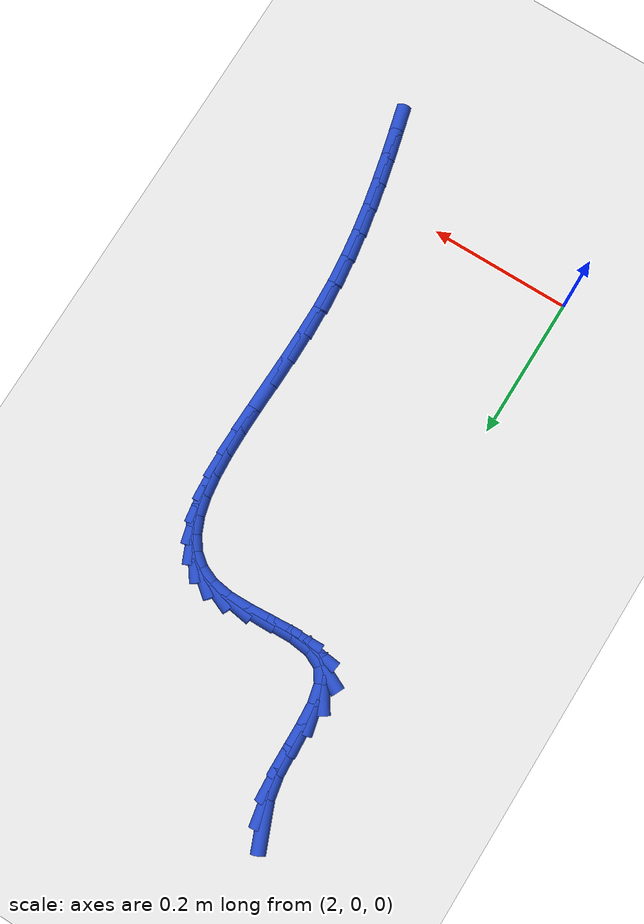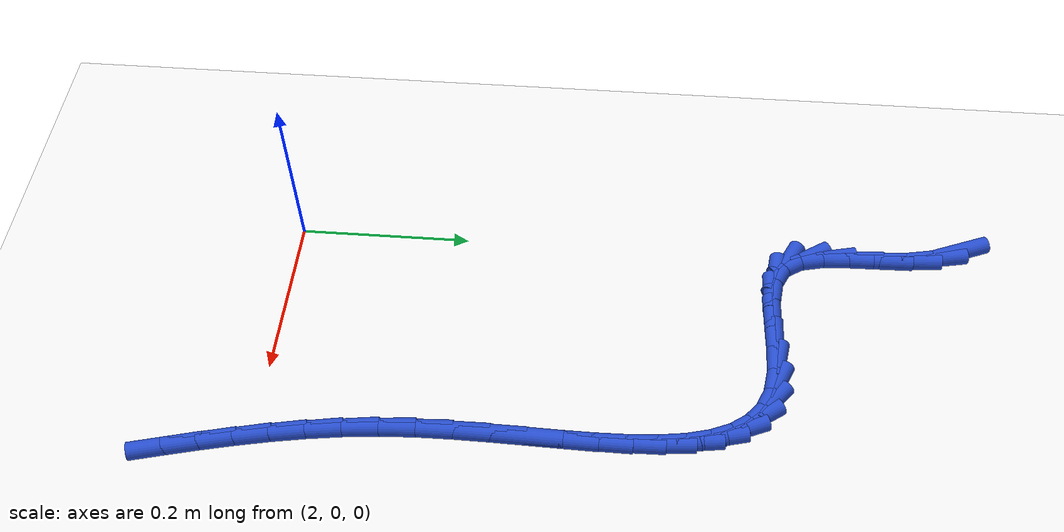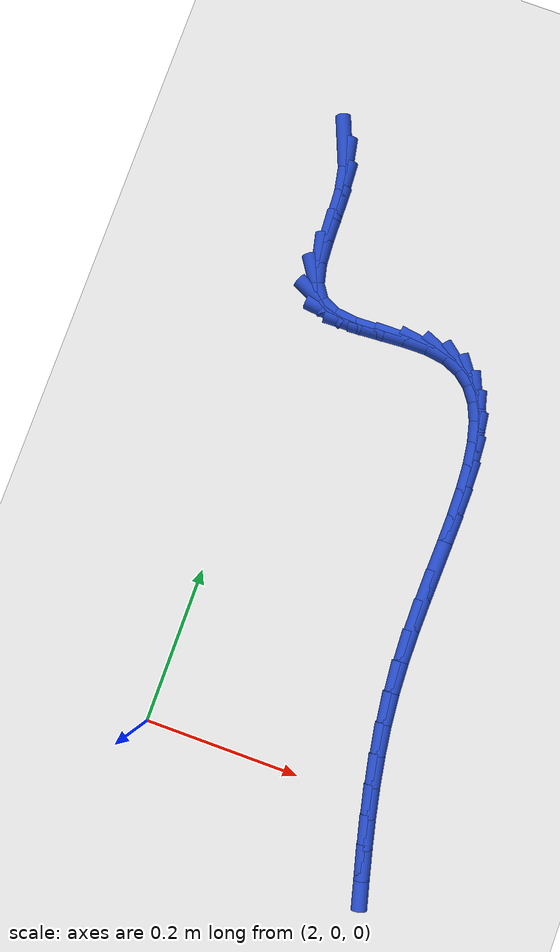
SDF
<sdf version="1.6">
 <world name="default">
  <model name="ground_plane">
   <static>1</static>
   <link name="link">
    <collision name="collision">
     <geometry><plane><normal>0 0 1</normal><size>100 100</size></plane></geometry>
     <surface><friction><ode><mu>100</mu><mu2>50</mu2></ode></friction></surface>
    </collision>
    <visual name="visual">
     <cast_shadows>0</cast_shadows>
     <geometry><plane><normal>0 0 1</normal><size>100 100</size></plane></geometry>
     <material>
      <script><uri>file://media/materials/scripts/gazebo.material</uri><name>Gazebo/WhiteGlow</name></script>
     </material>
    </visual>
   </link>
  </model>
  <model name="line">
   <link name="link_97">
    <pose>1.9829195325251114 0.7785023798792475 0.01 0 1.57 -1.179465124337573</pose>
    <collision name="collision">
     <geometry><cylinder><radius>0.01</radius><length>0.08</length></cylinder></geometry>
    </collision>
    <visual name="visual">
     <material>
      <script><name>Gazebo/Blue</name><uri>file://media/materials/scripts/gazebo.material</uri></script>
     </material>
     <geometry><cylinder><radius>0.01</radius><length>0.08</length></cylinder></geometry>
    </visual>
   </link>
   <link name="link_98">
    <pose>1.9941751014416411 0.7512235521156433 0.01 0 1.57 -1.3770491648950995</pose>
    <collision name="collision">
     <geometry><cylinder><radius>0.01</radius><length>0.08</length></cylinder></geometry>
    </collision>
    <visual name="visual">
     <material>
      <script><name>Gazebo/Blue</name><uri>file://media/materials/scripts/gazebo.material</uri></script>
     </material>
     <geometry><cylinder><radius>0.01</radius><length>0.08</length></cylinder></geometry>
    </visual>
   </link>
   <link name="link_99">
    <pose>2.0002744372742893 0.7201375469455553 0.01 0 1.57 -1.5091721894389243</pose>
    <collision name="collision">
     <geometry><cylinder><radius>0.01</radius><length>0.08</length></cylinder></geometry>
    </collision>
    <visual name="visual">
     <material>
      <script><name>Gazebo/Blue</name><uri>file://media/materials/scripts/gazebo.material</uri></script>
     </material>
     <geometry><cylinder><radius>0.01</radius><length>0.08</length></cylinder></geometry>
    </visual>
   </link>
   <link name="link_100">
    <pose>2.0023562996591324 0.6863970924414534 0.01 0 1.57 -1.5493597859141965</pose>
    <collision name="collision">
     <geometry><cylinder><radius>0.01</radius><length>0.08</length></cylinder></geometry>
    </collision>
    <visual name="visual">
     <material>
      <script><name>Gazebo/Blue</name><uri>file://media/materials/scripts/gazebo.material</uri></script>
     </material>
     <geometry><cylinder><radius>0.01</radius><length>0.08</length></cylinder></geometry>
    </visual>
   </link>
   <link name="link_101">
    <pose>2.003083612430499 0.6524736452865388 0.01 0 1.57 -1.5045199084739298</pose>
    <collision name="collision">
     <geometry><cylinder><radius>0.01</radius><length>0.08</length></cylinder></geometry>
    </collision>
    <visual name="visual">
     <material>
      <script><name>Gazebo/Blue</name><uri>file://media/materials/scripts/gazebo.material</uri></script>
     </material>
     <geometry><cylinder><radius>0.01</radius><length>0.08</length></cylinder></geometry>
    </visual>
   </link>
   <link name="link_102">
    <pose>2.005179863088843 0.6208910627120544 0.01 0 1.57 -1.3431797479480343</pose>
    <collision name="collision">
     <geometry><cylinder><radius>0.01</radius><length>0.08</length></cylinder></geometry>
    </collision>
    <visual name="visual">
     <material>
      <script><name>Gazebo/Blue</name><uri>file://media/materials/scripts/gazebo.material</uri></script>
     </material>
     <geometry><cylinder><radius>0.01</radius><length>0.08</length></cylinder></geometry>
    </visual>
   </link>
   <link name="link_103">
    <pose>2.011368539134622 0.5941732019492428 0.01 0 1.57 -0.9785649871428863</pose>
    <collision name="collision">
     <geometry><cylinder><radius>0.01</radius><length>0.08</length></cylinder></geometry>
    </collision>
    <visual name="visual">
     <material>
      <script><name>Gazebo/Blue</name><uri>file://media/materials/scripts/gazebo.material</uri></script>
     </material>
     <geometry><cylinder><radius>0.01</radius><length>0.08</length></cylinder></geometry>
    </visual>
   </link>
   <link name="link_104">
    <pose>2.024373128068291 0.5748439202293475 0.01 0 1.57 -0.4430360657510386</pose>
    <collision name="collision">
     <geometry><cylinder><radius>0.01</radius><length>0.08</length></cylinder></geometry>
    </collision>
    <visual name="visual">
     <material>
      <script><name>Gazebo/Blue</name><uri>file://media/materials/scripts/gazebo.material</uri></script>
     </material>
     <geometry><cylinder><radius>0.01</radius><length>0.08</length></cylinder></geometry>
    </visual>
   </link>
   <link name="link_105">
    <pose>2.046037708977068 0.5645641890345924 0.01 0 1.57 -0.11195586659149107</pose>
    <collision name="collision">
     <geometry><cylinder><radius>0.01</radius><length>0.08</length></cylinder></geometry>
    </collision>
    <visual name="visual">
     <material>
      <script><name>Gazebo/Blue</name><uri>file://media/materials/scripts/gazebo.material</uri></script>
     </material>
     <geometry><cylinder><radius>0.01</radius><length>0.08</length></cylinder></geometry>
    </visual>
   </link>
   <link name="link_106">
    <pose>2.0745055161289927 0.5613636679269103 0.01 0 1.57 0.029376128378163505</pose>
    <collision name="collision">
     <geometry><cylinder><radius>0.01</radius><length>0.08</length></cylinder></geometry>
    </collision>
    <visual name="visual">
     <material>
      <script><name>Gazebo/Blue</name><uri>file://media/materials/scripts/gazebo.material</uri></script>
     </material>
     <geometry><cylinder><radius>0.01</radius><length>0.08</length></cylinder></geometry>
    </visual>
   </link>
   <link name="link_107">
    <pose>2.106946409175984 0.5623169299895683 0.01 0 1.57 0.06486909663247985</pose>
    <collision name="collision">
     <geometry><cylinder><radius>0.01</radius><length>0.08</length></cylinder></geometry>
    </collision>
    <visual name="visual">
     <material>
      <script><name>Gazebo/Blue</name><uri>file://media/materials/scripts/gazebo.material</uri></script>
     </material>
     <geometry><cylinder><radius>0.01</radius><length>0.08</length></cylinder></geometry>
    </visual>
   </link>
   <link name="link_108">
    <pose>2.1405302432852547 0.564498543905389 0.01 0 1.57 0.01518960408982816</pose>
    <collision name="collision">
     <geometry><cylinder><radius>0.01</radius><length>0.08</length></cylinder></geometry>
    </collision>
    <visual name="visual">
     <material>
      <script><name>Gazebo/Blue</name><uri>file://media/materials/scripts/gazebo.material</uri></script>
     </material>
     <geometry><cylinder><radius>0.01</radius><length>0.08</length></cylinder></geometry>
    </visual>
   </link>
   <link name="link_109">
    <pose>2.17242687362402 0.564983078357195 0.01 0 1.57 -0.14372932333021074</pose>
    <collision name="collision">
     <geometry><cylinder><radius>0.01</radius><length>0.08</length></cylinder></geometry>
    </collision>
    <visual name="visual">
     <material>
      <script><name>Gazebo/Blue</name><uri>file://media/materials/scripts/gazebo.material</uri></script>
     </material>
     <geometry><cylinder><radius>0.01</radius><length>0.08</length></cylinder></geometry>
    </visual>
   </link>
   <link name="link_110">
    <pose>2.1999589422204284 0.560998436504028 0.01 0 1.57 -0.39489830687979127</pose>
    <collision name="collision">
     <geometry><cylinder><radius>0.01</radius><length>0.08</length></cylinder></geometry>
    </collision>
    <visual name="visual">
     <material>
      <script><name>Gazebo/Blue</name><uri>file://media/materials/scripts/gazebo.material</uri></script>
     </material>
     <geometry><cylinder><radius>0.01</radius><length>0.08</length></cylinder></geometry>
    </visual>
   </link>
   <link name="link_111">
    <pose>2.2223399805908524 0.551670188277359 0.01 0 1.57 -0.6777884537350481</pose>
    <collision name="collision">
     <geometry><cylinder><radius>0.01</radius><length>0.08</length></cylinder></geometry>
    </collision>
    <visual name="visual">
     <material>
      <script><name>Gazebo/Blue</name><uri>file://media/materials/scripts/gazebo.material</uri></script>
     </material>
     <geometry><cylinder><radius>0.01</radius><length>0.08</length></cylinder></geometry>
    </visual>
   </link>
   <link name="link_112">
    <pose>2.240060240143359 0.537405199491505 0.01 0 1.57 -0.9447153417307783</pose>
    <collision name="collision">
     <geometry><cylinder><radius>0.01</radius><length>0.08</length></cylinder></geometry>
    </collision>
    <visual name="visual">
     <material>
      <script><name>Gazebo/Blue</name><uri>file://media/materials/scripts/gazebo.material</uri></script>
     </material>
     <geometry><cylinder><radius>0.01</radius><length>0.08</length></cylinder></geometry>
    </visual>
   </link>
   <link name="link_113">
    <pose>2.253633954343885 0.5186344039746121 0.01 0 1.57 -1.1603560079018391</pose>
    <collision name="collision">
     <geometry><cylinder><radius>0.01</radius><length>0.08</length></cylinder></geometry>
    </collision>
    <visual name="visual">
     <material>
      <script><name>Gazebo/Blue</name><uri>file://media/materials/scripts/gazebo.material</uri></script>
     </material>
     <geometry><cylinder><radius>0.01</radius><length>0.08</length></cylinder></geometry>
    </visual>
   </link>
   <link name="link_114">
    <pose>2.2635753566583685 0.495788735554825 0.01 0 1.57 -1.3186917372492533</pose>
    <collision name="collision">
     <geometry><cylinder><radius>0.01</radius><length>0.08</length></cylinder></geometry>
    </collision>
    <visual name="visual">
     <material>
      <script><name>Gazebo/Blue</name><uri>file://media/materials/scripts/gazebo.material</uri></script>
     </material>
     <geometry><cylinder><radius>0.01</radius><length>0.08</length></cylinder></geometry>
    </visual>
   </link>
   <link name="link_115">
    <pose>2.2703986805527445 0.46929912806028956 0.01 0 1.57 -1.4296830087555936</pose>
    <collision name="collision">
     <geometry><cylinder><radius>0.01</radius><length>0.08</length></cylinder></geometry>
    </collision>
    <visual name="visual">
     <material>
      <script><name>Gazebo/Blue</name><uri>file://media/materials/scripts/gazebo.material</uri></script>
     </material>
     <geometry><cylinder><radius>0.01</radius><length>0.08</length></cylinder></geometry>
    </visual>
   </link>
   <link name="link_116">
    <pose>2.2746181594929484 0.4395965153191507 0.01 0 1.57 -1.505324754810154</pose>
    <collision name="collision">
     <geometry><cylinder><radius>0.01</radius><length>0.08</length></cylinder></geometry>
    </collision>
    <visual name="visual">
     <material>
      <script><name>Gazebo/Blue</name><uri>file://media/materials/scripts/gazebo.material</uri></script>
     </material>
     <geometry><cylinder><radius>0.01</radius><length>0.08</length></cylinder></geometry>
    </visual>
   </link>
   <link name="link_117">
    <pose>2.2767480269449174 0.40711183115955446 0.01 0 1.57 -1.5548804511000776</pose>
    <collision name="collision">
     <geometry><cylinder><radius>0.01</radius><length>0.08</length></cylinder></geometry>
    </collision>
    <visual name="visual">
     <material>
      <script><name>Gazebo/Blue</name><uri>file://media/materials/scripts/gazebo.material</uri></script>
     </material>
     <geometry><cylinder><radius>0.01</radius><length>0.08</length></cylinder></geometry>
    </visual>
   </link>
   <link name="link_118">
    <pose>2.277302516374588 0.37227600940964595 0.01 0 1.57 1.5570129257311485</pose>
    <collision name="collision">
     <geometry><cylinder><radius>0.01</radius><length>0.08</length></cylinder></geometry>
    </collision>
    <visual name="visual">
     <material>
      <script><name>Gazebo/Blue</name><uri>file://media/materials/scripts/gazebo.material</uri></script>
     </material>
     <geometry><cylinder><radius>0.01</radius><length>0.08</length></cylinder></geometry>
    </visual>
   </link>
   <link name="link_119">
    <pose>2.276795861247897 0.3355199838975707 0.01 0 1.57 1.543255688937032</pose>
    <collision name="collision">
     <geometry><cylinder><radius>0.01</radius><length>0.08</length></cylinder></geometry>
    </collision>
    <visual name="visual">
     <material>
      <script><name>Gazebo/Blue</name><uri>file://media/materials/scripts/gazebo.material</uri></script>
     </material>
     <geometry><cylinder><radius>0.01</radius><length>0.08</length></cylinder></geometry>
    </visual>
   </link>
   <link name="link_120">
    <pose>2.275742295030779 0.297274688451474 0.01 0 1.57 1.5431661216056443</pose>
    <collision name="collision">
     <geometry><cylinder><radius>0.01</radius><length>0.08</length></cylinder></geometry>
    </collision>
    <visual name="visual">
     <material>
      <script><name>Gazebo/Blue</name><uri>file://media/materials/scripts/gazebo.material</uri></script>
     </material>
     <geometry><cylinder><radius>0.01</radius><length>0.08</length></cylinder></geometry>
    </visual>
   </link>
   <link name="link_121">
    <pose>2.2746560511891714 0.2579710568995013 0.01 0 1.57 1.5556541747839199</pose>
    <collision name="collision">
     <geometry><cylinder><radius>0.01</radius><length>0.08</length></cylinder></geometry>
    </collision>
    <visual name="visual">
     <material>
      <script><name>Gazebo/Blue</name><uri>file://media/materials/scripts/gazebo.material</uri></script>
     </material>
     <geometry><cylinder><radius>0.01</radius><length>0.08</length></cylinder></geometry>
    </visual>
   </link>
   <link name="link_122">
    <pose>2.274051363189011 0.2180400230697981 0.01 0 1.57 -1.561050170127393</pose>
    <collision name="collision">
     <geometry><cylinder><radius>0.01</radius><length>0.08</length></cylinder></geometry>
    </collision>
    <visual name="visual">
     <material>
      <script><name>Gazebo/Blue</name><uri>file://media/materials/scripts/gazebo.material</uri></script>
     </material>
     <geometry><cylinder><radius>0.01</radius><length>0.08</length></cylinder></geometry>
    </visual>
   </link>
   <link name="link_123">
    <pose>2.274442464496233 0.1779125207905104 0.01 0 1.57 -1.523187610581443</pose>
    <collision name="collision">
     <geometry><cylinder><radius>0.01</radius><length>0.08</length></cylinder></geometry>
    </collision>
    <visual name="visual">
     <material>
      <script><name>Gazebo/Blue</name><uri>file://media/materials/scripts/gazebo.material</uri></script>
     </material>
     <geometry><cylinder><radius>0.01</radius><length>0.08</length></cylinder></geometry>
    </visual>
   </link>
   <link name="link_124">
    <pose>2.2763431658477584 0.1380192985249435 0.01 0 1.57 -1.4764087506744945</pose>
    <collision name="collision">
     <geometry><cylinder><radius>0.01</radius><length>0.08</length></cylinder></geometry>
    </collision>
    <visual name="visual">
     <material>
      <script><name>Gazebo/Blue</name><uri>file://media/materials/scripts/gazebo.material</uri></script>
     </material>
     <geometry><cylinder><radius>0.01</radius><length>0.08</length></cylinder></geometry>
    </visual>
   </link>
   <link name="link_125">
    <pose>2.2800652418688885 0.09870251277817818 0.01 0 1.57 -1.433677446623769</pose>
    <collision name="collision">
     <geometry><cylinder><radius>0.01</radius><length>0.08</length></cylinder></geometry>
    </collision>
    <visual name="visual">
     <material>
      <script><name>Gazebo/Blue</name><uri>file://media/materials/scripts/gazebo.material</uri></script>
     </material>
     <geometry><cylinder><radius>0.01</radius><length>0.08</length></cylinder></geometry>
    </visual>
   </link>
   <link name="link_126">
    <pose>2.285395377562229 0.060074070534327804 0.01 0 1.57 -1.3971848334210277</pose>
    <collision name="collision">
     <geometry><cylinder><radius>0.01</radius><length>0.08</length></cylinder></geometry>
    </collision>
    <visual name="visual">
     <material>
      <script><name>Gazebo/Blue</name><uri>file://media/materials/scripts/gazebo.material</uri></script>
     </material>
     <geometry><cylinder><radius>0.01</radius><length>0.08</length></cylinder></geometry>
    </visual>
   </link>
   <link name="link_127">
    <pose>2.292036050162866 0.022208954036859813 0.01 0 1.57 -1.366960481322921</pose>
    <collision name="collision">
     <geometry><cylinder><radius>0.01</radius><length>0.08</length></cylinder></geometry>
    </collision>
    <visual name="visual">
     <material>
      <script><name>Gazebo/Blue</name><uri>file://media/materials/scripts/gazebo.material</uri></script>
     </material>
     <geometry><cylinder><radius>0.01</radius><length>0.08</length></cylinder></geometry>
    </visual>
   </link>
   <link name="link_128">
    <pose>2.2996897369058824 -0.014817854470758531 0.01 0 1.57 -1.3430699087283624</pose>
    <collision name="collision">
     <geometry><cylinder><radius>0.01</radius><length>0.08</length></cylinder></geometry>
    </collision>
    <visual name="visual">
     <material>
      <script><name>Gazebo/Blue</name><uri>file://media/materials/scripts/gazebo.material</uri></script>
     </material>
     <geometry><cylinder><radius>0.01</radius><length>0.08</length></cylinder></geometry>
    </visual>
   </link>
   <link name="link_129">
    <pose>2.308058915026365 -0.050931372745059836 0.01 0 1.57 -1.3256613141014015</pose>
    <collision name="collision">
     <geometry><cylinder><radius>0.01</radius><length>0.08</length></cylinder></geometry>
    </collision>
    <visual name="visual">
     <material>
      <script><name>Gazebo/Blue</name><uri>file://media/materials/scripts/gazebo.material</uri></script>
     </material>
     <geometry><cylinder><radius>0.01</radius><length>0.08</length></cylinder></geometry>
    </visual>
   </link>
   <link name="link_130">
    <pose>2.316846061759396 -0.08605661854257676 0.01 0 1.57 -1.315013266989854</pose>
    <collision name="collision">
     <geometry><cylinder><radius>0.01</radius><length>0.08</length></cylinder></geometry>
    </collision>
    <visual name="visual">
     <material>
      <script><name>Gazebo/Blue</name><uri>file://media/materials/scripts/gazebo.material</uri></script>
     </material>
     <geometry><cylinder><radius>0.01</radius><length>0.08</length></cylinder></geometry>
    </visual>
   </link>
  </model>
 </world>
</sdf>
